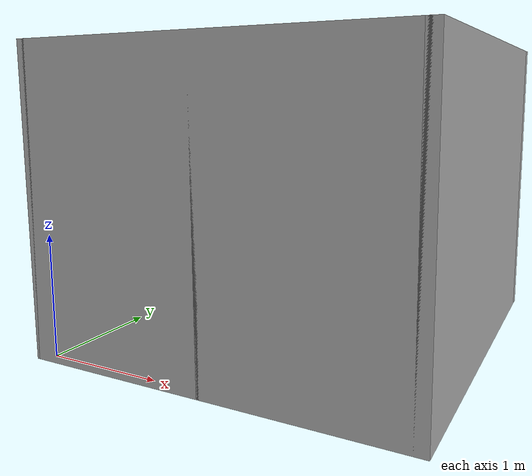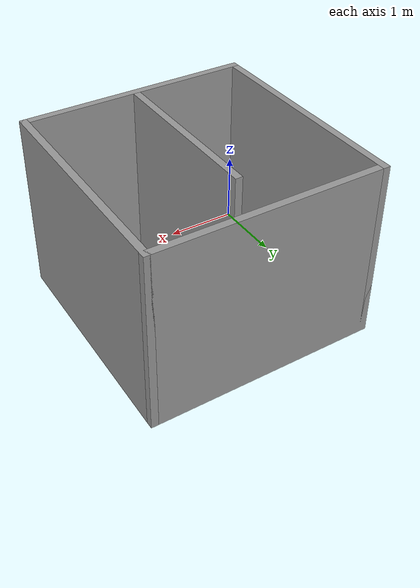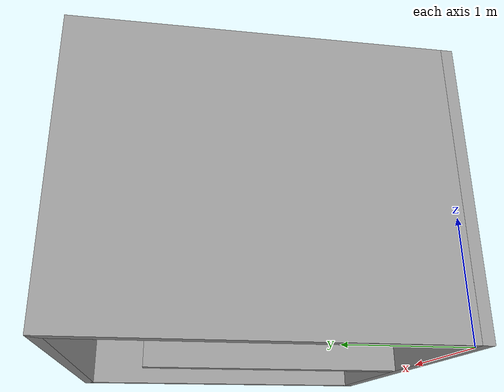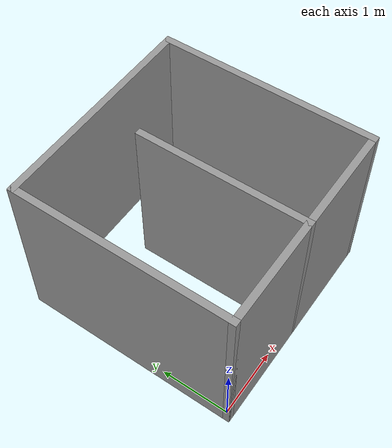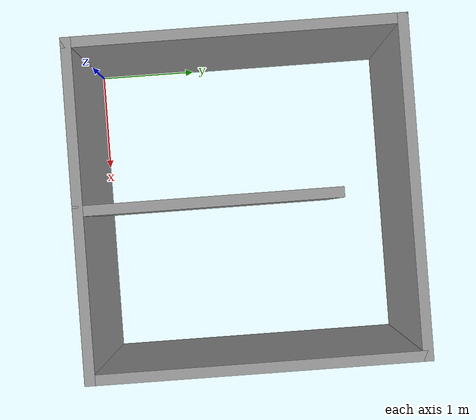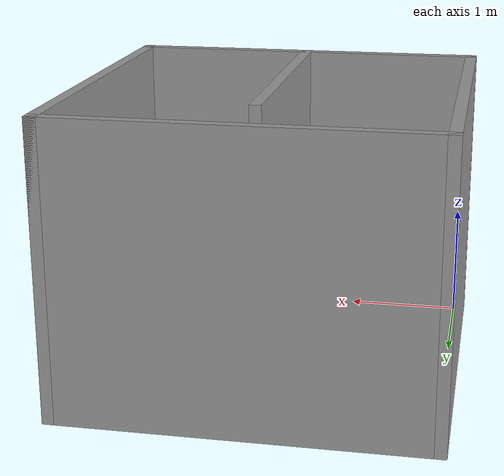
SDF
<?xml version='1.0'?>
<sdf version='1.7'>
  <model name='Critical_Point_World2'>
    <pose>1.5 1.5 0 0 -0 0</pose>
    <link name='Wall_0'>
      <collision name='Wall_0_Collision'>
        <geometry>
          <box>
            <size>3.2 0.1 2.5</size>
          </box>
        </geometry>
        <pose>0 0 1.25 0 -0 0</pose>
      </collision>
      <visual name='Wall_0_Visual'>
        <pose>0 0 1.25 0 -0 0</pose>
        <geometry>
          <box>
            <size>3.2 0.1 2.5</size>
          </box>
        </geometry>
        <material>
          <script>
            <uri>file://media/materials/scripts/gazebo.material</uri>
            <name>Gazebo/Grey</name>
          </script>
          <ambient>1 1 1 1</ambient>
        </material>
        <meta>
          <layer>0</layer>
        </meta>
      </visual>
      <pose>0 -1.55 0 0 -0 0</pose>
    </link>
    <link name='Wall_10'>
      <collision name='Wall_10_Collision'>
        <geometry>
          <box>
            <size>2.5 0.1 2.5</size>
          </box>
        </geometry>
        <pose>0 0 1.25 0 -0 0</pose>
      </collision>
      <visual name='Wall_10_Visual'>
        <pose>0 0 1.25 0 -0 0</pose>
        <geometry>
          <box>
            <size>2.5 0.1 2.5</size>
          </box>
        </geometry>
        <material>
          <script>
            <uri>file://media/materials/scripts/gazebo.material</uri>
            <name>Gazebo/Grey</name>
          </script>
          <ambient>1 1 1 1</ambient>
        </material>
        <meta>
          <layer>0</layer>
        </meta>
      </visual>
      <pose>0 -0.35 0 0 -0 1.5708</pose>
    </link>
    <link name='Wall_2'>
      <collision name='Wall_2_Collision'>
        <geometry>
          <box>
            <size>3.2 0.1 2.5</size>
          </box>
        </geometry>
        <pose>0 0 1.25 0 -0 0</pose>
      </collision>
      <visual name='Wall_2_Visual'>
        <pose>0 0 1.25 0 -0 0</pose>
        <geometry>
          <box>
            <size>3.2 0.1 2.5</size>
          </box>
        </geometry>
        <material>
          <script>
            <uri>file://media/materials/scripts/gazebo.material</uri>
            <name>Gazebo/Grey</name>
          </script>
          <ambient>1 1 1 1</ambient>
        </material>
        <meta>
          <layer>0</layer>
        </meta>
      </visual>
      <pose>-1.55 -0 0 0 -0 1.5708</pose>
    </link>
    <link name='Wall_4'>
      <collision name='Wall_4_Collision'>
        <geometry>
          <box>
            <size>3.2 0.1 2.5</size>
          </box>
        </geometry>
        <pose>0 0 1.25 0 -0 0</pose>
      </collision>
      <visual name='Wall_4_Visual'>
        <pose>0 0 1.25 0 -0 0</pose>
        <geometry>
          <box>
            <size>3.2 0.1 2.5</size>
          </box>
        </geometry>
        <material>
          <script>
            <uri>file://media/materials/scripts/gazebo.material</uri>
            <name>Gazebo/Grey</name>
          </script>
          <ambient>1 1 1 1</ambient>
        </material>
        <meta>
          <layer>0</layer>
        </meta>
      </visual>
      <pose>1.55 -0 0 0 -0 1.5708</pose>
    </link>
    <link name='Wall_6'>
      <collision name='Wall_6_Collision'>
        <geometry>
          <box>
            <size>3.2 0.1 2.5</size>
          </box>
        </geometry>
        <pose>0 0 1.25 0 -0 0</pose>
      </collision>
      <visual name='Wall_6_Visual'>
        <pose>0 0 1.25 0 -0 0</pose>
        <geometry>
          <box>
            <size>3.2 0.1 2.5</size>
          </box>
        </geometry>
        <material>
          <script>
            <uri>file://media/materials/scripts/gazebo.material</uri>
            <name>Gazebo/Grey</name>
          </script>
          <ambient>1 1 1 1</ambient>
        </material>
        <meta>
          <layer>0</layer>
        </meta>
      </visual>
      <pose>0 1.55 0 0 -0 0</pose>
    </link>
    <static>1</static>
  </model>
</sdf>
